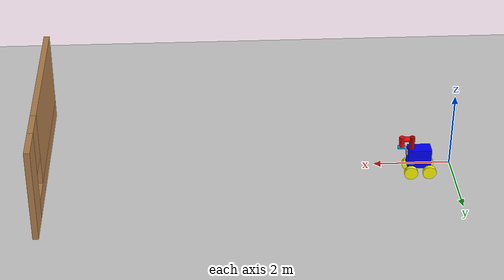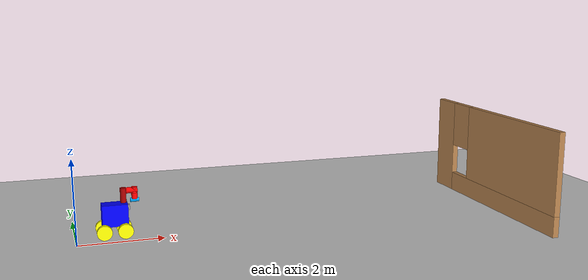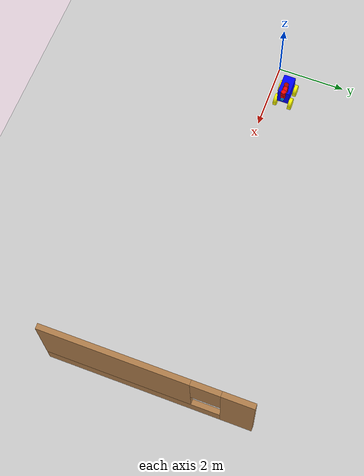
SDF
<sdf version="1.7">
 <world name="default">
  <model name="ground_plane">
   <static>true</static>
   <link name="link">
    <collision name="collision"><geometry><plane><normal>0 0 1</normal></plane></geometry></collision>
    <visual name="visual">
     <geometry><plane><normal>0 0 1</normal><size>100 100</size></plane></geometry>
     <material>
      <ambient>0.8 0.8 0.8 1</ambient>
      <diffuse>0.8 0.8 0.8 1</diffuse>
      <specular>0.8 0.8 0.8 1</specular>
     </material>
    </visual>
   </link>
  </model>
  <model name="bot">
   <link name="link_0">
    <inertial>
     <mass>1</mass>
     <inertia>
      <ixx>0.166667</ixx>
      <ixy>0</ixy>
      <ixz>0</ixz>
      <iyy>0.166667</iyy>
      <iyz>0</iyz>
      <izz>0.166667</izz>
     </inertia>
    </inertial>
    <pose>-0.916006 -0.480893 0.164071 0 -0 0</pose>
    <visual name="visual">
     <geometry><box><size>0.6 0.35 0.52</size></box></geometry>
     <material>
      <lighting>1</lighting>
      <script><uri>file://media/materials/scripts/gazebo.material</uri><name>Gazebo/Grey</name></script>
      <shader type="pixel"><normal_map>__default__</normal_map></shader>
      <ambient>0 0 1 1</ambient>
      <diffuse>0 0 1 1</diffuse>
      <specular>0.01 0.01 0.01 1</specular>
      <emissive>0 0 0 1</emissive>
     </material>
    </visual>
    <collision name="collision">
     <geometry><box><size>0.6 0.35 0.52</size></box></geometry>
     <surface>
      <friction>
       <ode><mu>1</mu><mu2>1</mu2><fdir1>0 0 0</fdir1><slip1>0</slip1><slip2>0</slip2></ode>
       <torsional>
        <coefficient>1</coefficient>
        <patch_radius>0</patch_radius>
        <surface_radius>0</surface_radius>
        <use_patch_radius>1</use_patch_radius>
        <ode><slip>0</slip></ode>
       </torsional>
      </friction>
      <bounce><restitution_coefficient>0</restitution_coefficient><threshold>1e+06</threshold></bounce>
      <contact>
       <collide_without_contact>0</collide_without_contact>
       <collide_without_contact_bitmask>1</collide_without_contact_bitmask>
       <collide_bitmask>1</collide_bitmask>
       <ode>
        <soft_cfm>0</soft_cfm>
        <soft_erp>0.2</soft_erp>
        <kp>1e+13</kp>
        <kd>1</kd>
        <max_vel>0.01</max_vel>
        <min_depth>0</min_depth>
       </ode>
       <bullet>
        <split_impulse>1</split_impulse>
        <split_impulse_penetration_threshold>-0.01</split_impulse_penetration_threshold>
        <soft_cfm>0</soft_cfm>
        <soft_erp>0.2</soft_erp>
        <kp>1e+13</kp>
        <kd>1</kd>
       </bullet>
      </contact>
     </surface>
    </collision>
   </link>
   <link name="depth">
    <pose>-1.24249 -0.502778 0.308174 0 -0 3.14</pose>
    <sensor name="depth_camera" type="depth">
     <always_on>1</always_on>
     <visualize>1</visualize>
     <update_rate>10</update_rate>
     <camera>
      <horizontal_fov>1.0472</horizontal_fov>
      <image><width>640</width><height>480</height><format>R8G8B8</format></image>
      <clip><near>0.05</near><far>40</far></clip>
     </camera>
     <plugin name="ignition::gazebo::systems::Sensors" filename="libignition-gazebo-sensors-system.so">
      <baseline>0.2</baseline>
      <alwaysOn>1</alwaysOn>
      <updateRate>1.0</updateRate>
      <cameraName>depth_camera_ir</cameraName>
      <imageTopicName>/depth_camera/color/image_raw</imageTopicName>
      <cameraInfoTopicName>/depth_camera/color/camera_info</cameraInfoTopicName>
      <depthImageTopicName>/depth_camera/depth/image_raw</depthImageTopicName>
      <depthImageInfoTopicName>/depth_camera/depth/camera_info</depthImageInfoTopicName>
      <pointCloudTopicName>/depth_camera/depth/points</pointCloudTopicName>
      <frameName>depth_frame</frameName>
      <pointCloudCutoff>0.5</pointCloudCutoff>
      <pointCloudCutoffMax>3.0</pointCloudCutoffMax>
      <distortionK1>0.00000001</distortionK1>
      <distortionK2>0.00000001</distortionK2>
      <distortionK3>0.00000001</distortionK3>
      <distortionT1>0.00000001</distortionT1>
      <distortionT2>0.00000001</distortionT2>
      <CxPrime>0</CxPrime>
      <Cx>0</Cx>
      <Cy>0</Cy>
      <focalLength>0</focalLength>
      <hackBaseline>0</hackBaseline>
     </plugin>
    </sensor>
    <inertial>
     <inertia><ixx>9e-07</ixx><ixy>0</ixy><ixz>0</ixz><iyy>7.5e-07</iyy><iyz>0</iyz><izz>3.5e-07</izz></inertia>
     <mass>0.000491</mass>
    </inertial>
    <visual name="visual">
     <geometry><box><size>0.049528 0.07825 0.126309</size></box></geometry>
     <material>
      <lighting>1</lighting>
      <script><uri>file://media/materials/scripts/gazebo.material</uri><name>Gazebo/Grey</name></script>
      <shader type="pixel"><normal_map>__default__</normal_map></shader>
      <emissive>0 0 0 1</emissive>
      <ambient>0.3 0.3 0.3 1</ambient>
      <diffuse>0.7 0.7 0.7 1</diffuse>
      <specular>0.01 0.01 0.01 1</specular>
     </material>
    </visual>
    <collision name="collision_0">
     <geometry><box><size>0.049528 0.07825 0.126309</size></box></geometry>
     <surface>
      <friction>
       <ode><mu>1</mu><mu2>1</mu2><fdir1>0 0 0</fdir1><slip1>0</slip1><slip2>0</slip2></ode>
       <torsional>
        <coefficient>1</coefficient>
        <patch_radius>0</patch_radius>
        <surface_radius>0</surface_radius>
        <use_patch_radius>1</use_patch_radius>
        <ode><slip>0</slip></ode>
       </torsional>
      </friction>
      <bounce><restitution_coefficient>0</restitution_coefficient><threshold>1e+06</threshold></bounce>
      <contact>
       <collide_without_contact>0</collide_without_contact>
       <collide_without_contact_bitmask>1</collide_without_contact_bitmask>
       <collide_bitmask>1</collide_bitmask>
       <ode>
        <soft_cfm>0</soft_cfm>
        <soft_erp>0.2</soft_erp>
        <kp>1e+13</kp>
        <kd>1</kd>
        <max_vel>0.01</max_vel>
        <min_depth>0</min_depth>
       </ode>
       <bullet>
        <split_impulse>1</split_impulse>
        <split_impulse_penetration_threshold>-0.01</split_impulse_penetration_threshold>
        <soft_cfm>0</soft_cfm>
        <soft_erp>0.2</soft_erp>
        <kp>1e+13</kp>
        <kd>1</kd>
       </bullet>
      </contact>
     </surface>
    </collision>
   </link>
   <link name="link_0_0">
    <inertial>
     <mass>1</mass>
     <inertia><ixx>0.145833</ixx><ixy>0</ixy><ixz>0</ixz><iyy>0.145833</iyy><iyz>0</iyz><izz>0.125</izz></inertia>
    </inertial>
    <pose>-1.13 -0.515896 0.599073 -7e-06 0 4.2e-05</pose>
    <visual name="visual">
     <geometry><cylinder><radius>0.07</radius><length>0.35</length></cylinder></geometry>
     <material>
      <lighting>1</lighting>
      <script><uri>file://media/materials/scripts/gazebo.material</uri><name>Gazebo/Grey</name></script>
      <shader type="pixel"><normal_map>__default__</normal_map></shader>
      <ambient>0.667 0 0 1</ambient>
      <diffuse>0.667 0 0 1</diffuse>
      <specular>0.01 0.01 0.01 1</specular>
      <emissive>0 0 0 1</emissive>
     </material>
    </visual>
    <collision name="collision">
     <geometry><cylinder><radius>0.07</radius><length>0.35</length></cylinder></geometry>
     <surface>
      <friction>
       <ode><mu>1</mu><mu2>1</mu2><fdir1>0 0 0</fdir1><slip1>0</slip1><slip2>0</slip2></ode>
       <torsional>
        <coefficient>1</coefficient>
        <patch_radius>0</patch_radius>
        <surface_radius>0</surface_radius>
        <use_patch_radius>1</use_patch_radius>
        <ode><slip>0</slip></ode>
       </torsional>
      </friction>
      <bounce><restitution_coefficient>0</restitution_coefficient><threshold>1e+06</threshold></bounce>
      <contact>
       <collide_without_contact>0</collide_without_contact>
       <collide_without_contact_bitmask>1</collide_without_contact_bitmask>
       <collide_bitmask>1</collide_bitmask>
       <ode>
        <soft_cfm>0</soft_cfm>
        <soft_erp>0.2</soft_erp>
        <kp>1e+13</kp>
        <kd>1</kd>
        <max_vel>0.01</max_vel>
        <min_depth>0</min_depth>
       </ode>
       <bullet>
        <split_impulse>1</split_impulse>
        <split_impulse_penetration_threshold>-0.01</split_impulse_penetration_threshold>
        <soft_cfm>0</soft_cfm>
        <soft_erp>0.2</soft_erp>
        <kp>1e+13</kp>
        <kd>1</kd>
       </bullet>
      </contact>
     </surface>
    </collision>
   </link>
   <link name="link_0_1">
    <inertial>
     <mass>0.2</mass>
     <inertia>
      <ixx>0.00059542</ixx>
      <ixy>0</ixy>
      <ixz>0</ixz>
      <iyy>0.00059542</iyy>
      <iyz>0</iyz>
      <izz>0.00049</izz>
     </inertia>
    </inertial>
    <pose>-1.38898 -0.512876 0.570835 -1.1e-05 7e-06 -0.016029</pose>
    <visual name="visual">
     <geometry><cylinder><radius>0.07</radius><length>0.145</length></cylinder></geometry>
     <material>
      <lighting>1</lighting>
      <script><uri>file://media/materials/scripts/gazebo.material</uri><name>Gazebo/Grey</name></script>
      <shader type="pixel"><normal_map>__default__</normal_map></shader>
      <ambient>1 0 0 1</ambient>
      <diffuse>1 0 0 1</diffuse>
      <specular>0.01 0.01 0.01 1</specular>
      <emissive>0 0 0 1</emissive>
     </material>
    </visual>
    <collision name="collision">
     <geometry><cylinder><radius>0.07</radius><length>0.145</length></cylinder></geometry>
     <surface>
      <friction>
       <ode><mu>1</mu><mu2>1</mu2><fdir1>0 0 0</fdir1><slip1>0</slip1><slip2>0</slip2></ode>
       <torsional>
        <coefficient>1</coefficient>
        <patch_radius>0</patch_radius>
        <surface_radius>0</surface_radius>
        <use_patch_radius>1</use_patch_radius>
        <ode><slip>0</slip></ode>
       </torsional>
      </friction>
      <bounce><restitution_coefficient>0</restitution_coefficient><threshold>1e+06</threshold></bounce>
      <contact>
       <collide_without_contact>0</collide_without_contact>
       <collide_without_contact_bitmask>1</collide_without_contact_bitmask>
       <collide_bitmask>1</collide_bitmask>
       <ode>
        <soft_cfm>0</soft_cfm>
        <soft_erp>0.2</soft_erp>
        <kp>1e+13</kp>
        <kd>1</kd>
        <max_vel>0.01</max_vel>
        <min_depth>0</min_depth>
       </ode>
       <bullet>
        <split_impulse>1</split_impulse>
        <split_impulse_penetration_threshold>-0.01</split_impulse_penetration_threshold>
        <soft_cfm>0</soft_cfm>
        <soft_erp>0.2</soft_erp>
        <kp>1e+13</kp>
        <kd>1</kd>
       </bullet>
      </contact>
     </surface>
    </collision>
   </link>
   <link name="link_0_1_clone">
    <inertial>
     <mass>0.2</mass>
     <inertia>
      <ixx>0.00057167</ixx>
      <ixy>0</ixy>
      <ixz>0</ixz>
      <iyy>0.00057167</iyy>
      <iyz>0</iyz>
      <izz>0.00049</izz>
     </inertia>
    </inertial>
    <pose>-1.39048 -0.516372 0.71051 -1.3e-05 9e-06 0.011714</pose>
    <visual name="visual">
     <geometry><cylinder><radius>0.07</radius><length>0.14</length></cylinder></geometry>
     <material>
      <lighting>1</lighting>
      <script><uri>file://media/materials/scripts/gazebo.material</uri><name>Gazebo/Grey</name></script>
      <shader type="pixel"><normal_map>__default__</normal_map></shader>
      <ambient>1 0 0 1</ambient>
      <diffuse>1 0 0 1</diffuse>
      <specular>0.01 0.01 0.01 1</specular>
      <emissive>0 0 0 1</emissive>
     </material>
    </visual>
    <collision name="collision">
     <geometry><cylinder><radius>0.07</radius><length>0.14</length></cylinder></geometry>
     <surface>
      <friction>
       <ode><mu>1</mu><mu2>1</mu2><fdir1>0 0 0</fdir1><slip1>0</slip1><slip2>0</slip2></ode>
       <torsional>
        <coefficient>1</coefficient>
        <patch_radius>0</patch_radius>
        <surface_radius>0</surface_radius>
        <use_patch_radius>1</use_patch_radius>
        <ode><slip>0</slip></ode>
       </torsional>
      </friction>
      <bounce><restitution_coefficient>0</restitution_coefficient><threshold>1e+06</threshold></bounce>
      <contact>
       <collide_without_contact>0</collide_without_contact>
       <collide_without_contact_bitmask>1</collide_without_contact_bitmask>
       <collide_bitmask>1</collide_bitmask>
       <ode>
        <soft_cfm>0</soft_cfm>
        <soft_erp>0.2</soft_erp>
        <kp>1e+13</kp>
        <kd>1</kd>
        <max_vel>0.01</max_vel>
        <min_depth>0</min_depth>
       </ode>
       <bullet>
        <split_impulse>1</split_impulse>
        <split_impulse_penetration_threshold>-0.01</split_impulse_penetration_threshold>
        <soft_cfm>0</soft_cfm>
        <soft_erp>0.2</soft_erp>
        <kp>1e+13</kp>
        <kd>1</kd>
       </bullet>
      </contact>
     </surface>
    </collision>
   </link>
   <link name="link_0_2">
    <inertial>
     <mass>0.01</mass>
     <inertia>
      <ixx>3.958e-05</ixx>
      <ixy>0</ixy>
      <ixz>0</ixz>
      <iyy>3.958e-05</iyy>
      <iyz>0</iyz>
      <izz>1.25e-05</izz>
     </inertia>
    </inertial>
    <pose>-1.38879 -0.51287 0.473335 -0.000762 -1.56347 0.033391</pose>
    <visual name="visual">
     <geometry><cylinder><radius>0.05</radius><length>0.2</length></cylinder></geometry>
     <material>
      <lighting>1</lighting>
      <script><uri>file://media/materials/scripts/gazebo.material</uri><name>Gazebo/Grey</name></script>
      <shader type="pixel"><normal_map>__default__</normal_map></shader>
      <ambient>0 0.667 1 1</ambient>
      <diffuse>0 0.667 1 1</diffuse>
      <specular>0.01 0.01 0.01 1</specular>
      <emissive>0 0 0 1</emissive>
     </material>
    </visual>
    <collision name="collision">
     <geometry><cylinder><radius>0.05</radius><length>0.2</length></cylinder></geometry>
     <surface>
      <friction>
       <ode><mu>1</mu><mu2>1</mu2><fdir1>0 0 0</fdir1><slip1>0</slip1><slip2>0</slip2></ode>
       <torsional>
        <coefficient>1</coefficient>
        <patch_radius>0</patch_radius>
        <surface_radius>0</surface_radius>
        <use_patch_radius>1</use_patch_radius>
        <ode><slip>0</slip></ode>
       </torsional>
      </friction>
      <bounce><restitution_coefficient>0</restitution_coefficient><threshold>1e+06</threshold></bounce>
      <contact>
       <collide_without_contact>0</collide_without_contact>
       <collide_without_contact_bitmask>1</collide_without_contact_bitmask>
       <collide_bitmask>1</collide_bitmask>
       <ode>
        <soft_cfm>0</soft_cfm>
        <soft_erp>0.2</soft_erp>
        <kp>1e+13</kp>
        <kd>1</kd>
        <max_vel>0.01</max_vel>
        <min_depth>0</min_depth>
       </ode>
       <bullet>
        <split_impulse>1</split_impulse>
        <split_impulse_penetration_threshold>-0.01</split_impulse_penetration_threshold>
        <soft_cfm>0</soft_cfm>
        <soft_erp>0.2</soft_erp>
        <kp>1e+13</kp>
        <kd>1</kd>
       </bullet>
      </contact>
     </surface>
    </collision>
   </link>
   <link name="link_2_clone_0">
    <inertial>
     <mass>4</mass>
     <inertia><ixx>0.0433333</ixx><ixy>0</ixy><ixz>0</ixz><iyy>0.0433333</iyy><iyz>0</iyz><izz>0.08</izz></inertia>
    </inertial>
    <pose>-1.13219 -0.255482 -0.2 1.56668 -0 0</pose>
    <visual name="visual">
     <geometry><cylinder><radius>0.175</radius><length>0.1</length></cylinder></geometry>
     <material>
      <lighting>1</lighting>
      <script><uri>file://media/materials/scripts/gazebo.material</uri><name>Gazebo/Grey</name></script>
      <shader type="pixel"><normal_map>__default__</normal_map></shader>
      <ambient>1 1 0 1</ambient>
      <diffuse>1 1 0 1</diffuse>
      <specular>0.01 0.01 0.01 1</specular>
      <emissive>0 0 0 1</emissive>
     </material>
    </visual>
    <collision name="collision">
     <geometry><cylinder><radius>0.175</radius><length>0.1</length></cylinder></geometry>
     <surface>
      <friction>
       <ode><mu>1</mu><mu2>1</mu2><fdir1>0 0 0</fdir1><slip1>0</slip1><slip2>0</slip2></ode>
       <torsional>
        <coefficient>1</coefficient>
        <patch_radius>0</patch_radius>
        <surface_radius>0</surface_radius>
        <use_patch_radius>1</use_patch_radius>
        <ode><slip>0</slip></ode>
       </torsional>
      </friction>
      <bounce><restitution_coefficient>0</restitution_coefficient><threshold>1e+06</threshold></bounce>
      <contact>
       <collide_without_contact>0</collide_without_contact>
       <collide_without_contact_bitmask>1</collide_without_contact_bitmask>
       <collide_bitmask>1</collide_bitmask>
       <ode>
        <soft_cfm>0</soft_cfm>
        <soft_erp>0.2</soft_erp>
        <kp>1e+13</kp>
        <kd>1</kd>
        <max_vel>0.01</max_vel>
        <min_depth>0</min_depth>
       </ode>
       <bullet>
        <split_impulse>1</split_impulse>
        <split_impulse_penetration_threshold>-0.01</split_impulse_penetration_threshold>
        <soft_cfm>0</soft_cfm>
        <soft_erp>0.2</soft_erp>
        <kp>1e+13</kp>
        <kd>1</kd>
       </bullet>
      </contact>
     </surface>
    </collision>
   </link>
   <link name="link_2_clone_0_clone">
    <inertial>
     <mass>4</mass>
     <inertia><ixx>0.0433333</ixx><ixy>0</ixy><ixz>0</ixz><iyy>0.0433333</iyy><iyz>0</iyz><izz>0.08</izz></inertia>
    </inertial>
    <pose>-0.65 -0.256174 -0.2 1.56668 -0 0</pose>
    <visual name="visual">
     <geometry><cylinder><radius>0.175</radius><length>0.1</length></cylinder></geometry>
     <material>
      <lighting>1</lighting>
      <script><uri>file://media/materials/scripts/gazebo.material</uri><name>Gazebo/Grey</name></script>
      <shader type="pixel"><normal_map>__default__</normal_map></shader>
      <ambient>1 1 0 1</ambient>
      <diffuse>1 1 0 1</diffuse>
      <specular>0.01 0.01 0.01 1</specular>
      <emissive>0 0 0 1</emissive>
     </material>
    </visual>
    <collision name="collision">
     <geometry><cylinder><radius>0.175</radius><length>0.1</length></cylinder></geometry>
     <surface>
      <friction>
       <ode><mu>1</mu><mu2>1</mu2><fdir1>0 0 0</fdir1><slip1>0</slip1><slip2>0</slip2></ode>
       <torsional>
        <coefficient>1</coefficient>
        <patch_radius>0</patch_radius>
        <surface_radius>0</surface_radius>
        <use_patch_radius>1</use_patch_radius>
        <ode><slip>0</slip></ode>
       </torsional>
      </friction>
      <bounce><restitution_coefficient>0</restitution_coefficient><threshold>1e+06</threshold></bounce>
      <contact>
       <collide_without_contact>0</collide_without_contact>
       <collide_without_contact_bitmask>1</collide_without_contact_bitmask>
       <collide_bitmask>1</collide_bitmask>
       <ode>
        <soft_cfm>0</soft_cfm>
        <soft_erp>0.2</soft_erp>
        <kp>1e+13</kp>
        <kd>1</kd>
        <max_vel>0.01</max_vel>
        <min_depth>0</min_depth>
       </ode>
       <bullet>
        <split_impulse>1</split_impulse>
        <split_impulse_penetration_threshold>-0.01</split_impulse_penetration_threshold>
        <soft_cfm>0</soft_cfm>
        <soft_erp>0.2</soft_erp>
        <kp>1e+13</kp>
        <kd>1</kd>
       </bullet>
      </contact>
     </surface>
    </collision>
   </link>
   <link name="link_2_clone_1">
    <inertial>
     <mass>4</mass>
     <inertia><ixx>0.0433333</ixx><ixy>0</ixy><ixz>0</ixz><iyy>0.0433333</iyy><iyz>0</iyz><izz>0.08</izz></inertia>
    </inertial>
    <pose>-0.65 -0.706304 -0.2 1.56668 -0 0</pose>
    <visual name="visual">
     <geometry><cylinder><radius>0.175</radius><length>0.1</length></cylinder></geometry>
     <material>
      <lighting>1</lighting>
      <script><uri>file://media/materials/scripts/gazebo.material</uri><name>Gazebo/Grey</name></script>
      <shader type="pixel"><normal_map>__default__</normal_map></shader>
      <ambient>1 1 0 1</ambient>
      <diffuse>1 1 0 1</diffuse>
      <specular>0.01 0.01 0.01 1</specular>
      <emissive>0 0 0 1</emissive>
     </material>
    </visual>
    <collision name="collision">
     <geometry><cylinder><radius>0.175</radius><length>0.1</length></cylinder></geometry>
     <surface>
      <friction>
       <ode><mu>1</mu><mu2>1</mu2><fdir1>0 0 0</fdir1><slip1>0</slip1><slip2>0</slip2></ode>
       <torsional>
        <coefficient>1</coefficient>
        <patch_radius>0</patch_radius>
        <surface_radius>0</surface_radius>
        <use_patch_radius>1</use_patch_radius>
        <ode><slip>0</slip></ode>
       </torsional>
      </friction>
      <bounce><restitution_coefficient>0</restitution_coefficient><threshold>1e+06</threshold></bounce>
      <contact>
       <collide_without_contact>0</collide_without_contact>
       <collide_without_contact_bitmask>1</collide_without_contact_bitmask>
       <collide_bitmask>1</collide_bitmask>
       <ode>
        <soft_cfm>0</soft_cfm>
        <soft_erp>0.2</soft_erp>
        <kp>1e+13</kp>
        <kd>1</kd>
        <max_vel>0.01</max_vel>
        <min_depth>0</min_depth>
       </ode>
       <bullet>
        <split_impulse>1</split_impulse>
        <split_impulse_penetration_threshold>-0.01</split_impulse_penetration_threshold>
        <soft_cfm>0</soft_cfm>
        <soft_erp>0.2</soft_erp>
        <kp>1e+13</kp>
        <kd>1</kd>
       </bullet>
      </contact>
     </surface>
    </collision>
   </link>
   <link name="link_2_clone_2">
    <inertial>
     <mass>4</mass>
     <inertia>
      <ixx>0.0339583</ixx>
      <ixy>0</ixy>
      <ixz>0</ixz>
      <iyy>0.0339583</iyy>
      <iyz>0</iyz>
      <izz>0.06125</izz>
     </inertia>
    </inertial>
    <pose>-1.13219 -0.706304 -0.2 1.56668 -0 0</pose>
    <visual name="visual">
     <geometry><cylinder><radius>0.175</radius><length>0.1</length></cylinder></geometry>
     <material>
      <lighting>1</lighting>
      <script><uri>file://media/materials/scripts/gazebo.material</uri><name>Gazebo/Grey</name></script>
      <shader type="pixel"><normal_map>__default__</normal_map></shader>
      <ambient>1 1 0 1</ambient>
      <diffuse>1 1 0 1</diffuse>
      <specular>0.01 0.01 0.01 1</specular>
      <emissive>0 0 0 1</emissive>
     </material>
    </visual>
    <collision name="collision">
     <geometry><cylinder><radius>0.175</radius><length>0.1</length></cylinder></geometry>
     <surface>
      <friction>
       <ode><mu>1</mu><mu2>1</mu2><fdir1>0 0 0</fdir1><slip1>0</slip1><slip2>0</slip2></ode>
       <torsional>
        <coefficient>1</coefficient>
        <patch_radius>0</patch_radius>
        <surface_radius>0</surface_radius>
        <use_patch_radius>1</use_patch_radius>
        <ode><slip>0</slip></ode>
       </torsional>
      </friction>
      <bounce><restitution_coefficient>0</restitution_coefficient><threshold>1e+06</threshold></bounce>
      <contact>
       <collide_without_contact>0</collide_without_contact>
       <collide_without_contact_bitmask>1</collide_without_contact_bitmask>
       <collide_bitmask>1</collide_bitmask>
       <ode>
        <soft_cfm>0</soft_cfm>
        <soft_erp>0.2</soft_erp>
        <kp>1e+13</kp>
        <kd>1</kd>
        <max_vel>0.01</max_vel>
        <min_depth>0</min_depth>
       </ode>
       <bullet>
        <split_impulse>1</split_impulse>
        <split_impulse_penetration_threshold>-0.01</split_impulse_penetration_threshold>
        <soft_cfm>0</soft_cfm>
        <soft_erp>0.2</soft_erp>
        <kp>1e+13</kp>
        <kd>1</kd>
       </bullet>
      </contact>
     </surface>
    </collision>
   </link>
   <link name="link_3">
    <inertial>
     <mass>0.5</mass>
     <inertia>
      <ixx>0.00342917</ixx>
      <ixy>0</ixy>
      <ixz>0</ixz>
      <iyy>0.00342917</iyy>
      <iyz>0</iyz>
      <izz>0.001225</izz>
     </inertia>
    </inertial>
    <pose>-1.32812 -0.514642 0.707474 -0.0003 -1.54728 0.00034</pose>
    <visual name="visual">
     <geometry><cylinder><radius>0.07</radius><length>0.26</length></cylinder></geometry>
     <material>
      <lighting>1</lighting>
      <script><uri>file://media/materials/scripts/gazebo.material</uri><name>Gazebo/Grey</name></script>
      <shader type="pixel"><normal_map>__default__</normal_map></shader>
      <ambient>1 0 0 1</ambient>
      <diffuse>1 0 0 1</diffuse>
      <specular>0.01 0.01 0.01 1</specular>
      <emissive>0 0 0 1</emissive>
     </material>
    </visual>
    <collision name="collision">
     <geometry><cylinder><radius>0.07</radius><length>0.26</length></cylinder></geometry>
     <surface>
      <friction>
       <ode><mu>1</mu><mu2>1</mu2><fdir1>0 0 0</fdir1><slip1>0</slip1><slip2>0</slip2></ode>
       <torsional>
        <coefficient>1</coefficient>
        <patch_radius>0</patch_radius>
        <surface_radius>0</surface_radius>
        <use_patch_radius>1</use_patch_radius>
        <ode><slip>0</slip></ode>
       </torsional>
      </friction>
      <bounce><restitution_coefficient>0</restitution_coefficient><threshold>1e+06</threshold></bounce>
      <contact>
       <collide_without_contact>0</collide_without_contact>
       <collide_without_contact_bitmask>1</collide_without_contact_bitmask>
       <collide_bitmask>1</collide_bitmask>
       <ode>
        <soft_cfm>0</soft_cfm>
        <soft_erp>0.2</soft_erp>
        <kp>1e+13</kp>
        <kd>1</kd>
        <max_vel>0.01</max_vel>
        <min_depth>0</min_depth>
       </ode>
       <bullet>
        <split_impulse>1</split_impulse>
        <split_impulse_penetration_threshold>-0.01</split_impulse_penetration_threshold>
        <soft_cfm>0</soft_cfm>
        <soft_erp>0.2</soft_erp>
        <kp>1e+13</kp>
        <kd>1</kd>
       </bullet>
      </contact>
     </surface>
    </collision>
   </link>
   <joint name="Arm_joint_1" type="revolute">
    <parent>link_0</parent>
    <child>link_0_0</child>
    <pose>0 0 -0.03 0 -0 0</pose>
    <axis>
     <xyz>0 0 -1</xyz>
     <limit><lower>-1.79769e+308</lower><upper>1.79769e+308</upper><effort>-1</effort></limit>
     <dynamics>
      <spring_reference>0</spring_reference>
      <spring_stiffness>0</spring_stiffness>
      <damping>0</damping>
      <friction>0</friction>
     </dynamics>
    </axis>
    <physics>
     <ode><limit><cfm>0</cfm><erp>0.2</erp></limit><suspension><cfm>0</cfm><erp>0.2</erp></suspension></ode>
    </physics>
   </joint>
   <joint name="Arm_joint_2_fixed" type="fixed">
    <parent>link_0_0</parent>
    <child>link_3</child>
    <physics>
     <ode><limit><cfm>0</cfm><erp>0.2</erp></limit><suspension><cfm>0</cfm><erp>0.2</erp></suspension></ode>
    </physics>
   </joint>
   <joint name="wheel_joint_1" type="revolute">
    <parent>link_0</parent>
    <child>link_2_clone_2</child>
    <axis>
     <xyz>0 0 1</xyz>
     <limit><lower>-1.79769e+308</lower><upper>1.79769e+308</upper><effort>-1</effort></limit>
     <dynamics>
      <spring_reference>0</spring_reference>
      <spring_stiffness>0</spring_stiffness>
      <damping>0</damping>
      <friction>0</friction>
     </dynamics>
    </axis>
    <physics>
     <ode><limit><cfm>0</cfm><erp>0.2</erp></limit><suspension><cfm>0</cfm><erp>0.2</erp></suspension></ode>
    </physics>
   </joint>
   <joint name="arm_joint_3_fixed" type="fixed">
    <parent>link_3</parent>
    <child>link_0_1_clone</child>
    <physics>
     <ode><limit><cfm>0</cfm><erp>0.2</erp></limit><suspension><cfm>0</cfm><erp>0.2</erp></suspension></ode>
    </physics>
   </joint>
   <joint name="arm_joint_3_prismatic" type="prismatic">
    <parent>link_3</parent>
    <child>link_0_1</child>
    <axis>
     <xyz>0 0 -1</xyz>
     <limit><lower>-0.145</lower><upper>0</upper><effort>-1</effort></limit>
     <dynamics>
      <spring_reference>0</spring_reference>
      <spring_stiffness>0</spring_stiffness>
      <damping>0</damping>
      <friction>0</friction>
     </dynamics>
    </axis>
    <physics>
     <ode><limit><cfm>0</cfm><erp>0.2</erp></limit><suspension><cfm>0</cfm><erp>0.2</erp></suspension></ode>
    </physics>
   </joint>
   <joint name="arm_joint_4_rotate" type="revolute">
    <parent>link_0_1</parent>
    <child>link_0_2</child>
    <axis>
     <xyz>1 0 0</xyz>
     <limit><lower>-1.79769e+308</lower><upper>1.79769e+308</upper><effort>-1</effort></limit>
     <dynamics>
      <spring_reference>0</spring_reference>
      <spring_stiffness>0</spring_stiffness>
      <damping>0</damping>
      <friction>0</friction>
     </dynamics>
    </axis>
    <physics>
     <ode><limit><cfm>0</cfm><erp>0.2</erp></limit><suspension><cfm>0</cfm><erp>0.2</erp></suspension></ode>
    </physics>
   </joint>
   <joint name="link_0_JOINT_0" type="fixed">
    <parent>link_0</parent>
    <child>depth</child>
    <physics>
     <ode><limit><cfm>0</cfm><erp>0.2</erp></limit><suspension><cfm>0</cfm><erp>0.2</erp></suspension></ode>
    </physics>
   </joint>
   <joint name="wheel_joint_2" type="revolute">
    <parent>link_0</parent>
    <child>link_2_clone_1</child>
    <axis>
     <xyz>0 0 1</xyz>
     <limit><lower>-1.79769e+308</lower><upper>1.79769e+308</upper><effort>-1</effort></limit>
     <dynamics>
      <spring_reference>0</spring_reference>
      <spring_stiffness>0</spring_stiffness>
      <damping>0</damping>
      <friction>0</friction>
     </dynamics>
    </axis>
    <physics>
     <ode><limit><cfm>0</cfm><erp>0.2</erp></limit><suspension><cfm>0</cfm><erp>0.2</erp></suspension></ode>
    </physics>
   </joint>
   <joint name="wheel_joint_3" type="revolute">
    <parent>link_0</parent>
    <child>link_2_clone_0</child>
    <axis>
     <xyz>0 0 1</xyz>
     <limit><lower>-1.79769e+308</lower><upper>1.79769e+308</upper><effort>-1</effort></limit>
     <dynamics>
      <spring_reference>0</spring_reference>
      <spring_stiffness>0</spring_stiffness>
      <damping>0</damping>
      <friction>0</friction>
     </dynamics>
    </axis>
    <physics>
     <ode><limit><cfm>0</cfm><erp>0.2</erp></limit><suspension><cfm>0</cfm><erp>0.2</erp></suspension></ode>
    </physics>
   </joint>
   <joint name="wheel_joint_4" type="revolute">
    <parent>link_0</parent>
    <child>link_2_clone_0_clone</child>
    <axis>
     <xyz>0 0 1</xyz>
     <limit><lower>-1.79769e+308</lower><upper>1.79769e+308</upper><effort>-1</effort></limit>
     <dynamics>
      <spring_reference>0</spring_reference>
      <spring_stiffness>0</spring_stiffness>
      <damping>0</damping>
      <friction>0</friction>
     </dynamics>
    </axis>
    <physics>
     <ode><limit><cfm>0</cfm><erp>0.2</erp></limit><suspension><cfm>0</cfm><erp>0.2</erp></suspension></ode>
    </physics>
   </joint>
   <static>0</static>
   <pose>0 0 0.375207 0 0 3.14</pose>
   <plugin filename="libignition-gazebo-diff-drive-system.so" name="ignition::gazebo::systems::DiffDrive">
    <num_wheel_pairs>2</num_wheel_pairs>
    <left_joint>wheel_joint_1</left_joint>
    <right_joint>wheel_joint_3</right_joint>
    <left_joint>wheel_joint_2</left_joint>
    <right_joint>wheel_joint_4</right_joint>
    <wheel_separation>0.425886</wheel_separation>
    <wheel_radius>0.175</wheel_radius>
    <odom_publish_frequency>50</odom_publish_frequency>
    <topic>cmd_vel</topic>
   </plugin>
  </model>
  <model name="Wall">
   <link name="Wall_2">
    <pose>-6.63909 -1.5e-05 0 0 -0 1.5708</pose>
    <inertial>
     <inertia><ixx>0</ixx><ixy>0</ixy><ixz>0</ixz><iyy>0</iyy><iyz>0</iyz><izz>0</izz></inertia>
     <mass>0</mass>
    </inertial>
    <visual name="Wall_2_Visual_0">
     <pose>-2.43375 0 1.25 0 -0 0</pose>
     <geometry><box><size>0.8825 0.15 2.5</size></box></geometry>
     <material>
      <script><uri>file://media/materials/scripts/gazebo.material</uri><name>Gazebo/Wood</name></script>
      <ambient>0.996078 0.47451 0.0196078 1</ambient>
      <diffuse>0.996078 0.47451 0.0196078 1</diffuse>
      <shader type="pixel"/>
     </material>
     <meta><layer>0</layer></meta>
    </visual>
    <visual name="Wall_2_Visual_2">
     <pose>0.84125 0 1.5 0 -0 0</pose>
     <geometry><box><size>4.0675 0.15 2</size></box></geometry>
     <material>
      <script><uri>file://media/materials/scripts/gazebo.material</uri><name>Gazebo/Wood</name></script>
      <ambient>0.996078 0.47451 0.0196078 1</ambient>
      <diffuse>0.996078 0.47451 0.0196078 1</diffuse>
      <shader type="pixel"/>
     </material>
     <meta><layer>0</layer></meta>
    </visual>
    <visual name="Wall_2_Visual_1">
     <pose>0.44125 0 0.25 0 -0 0</pose>
     <geometry><box><size>4.86751 0.15 0.5</size></box></geometry>
     <material>
      <script><uri>file://media/materials/scripts/gazebo.material</uri><name>Gazebo/Wood</name></script>
      <ambient>0.996078 0.47451 0.0196078 1</ambient>
      <diffuse>0.996078 0.47451 0.0196078 1</diffuse>
      <shader type="pixel"/>
     </material>
     <meta><layer>0</layer></meta>
    </visual>
    <visual name="Wall_2_Visual_3">
     <pose>-1.5925 0 1.9 0 -0 0</pose>
     <geometry><box><size>0.8 0.15 1.2</size></box></geometry>
     <material>
      <script><uri>file://media/materials/scripts/gazebo.material</uri><name>Gazebo/Wood</name></script>
      <ambient>0.996078 0.47451 0.0196078 1</ambient>
      <diffuse>0.996078 0.47451 0.0196078 1</diffuse>
      <shader type="pixel"/>
     </material>
     <meta><layer>0</layer></meta>
    </visual>
    <collision name="Wall_2_Collision_2">
     <pose>0.84125 0 1.5 0 -0 0</pose>
     <geometry><box><size>4.0675 0.15 2</size></box></geometry>
     <surface>
      <friction>
       <ode><mu>1</mu><mu2>1</mu2><fdir1>0 0 0</fdir1><slip1>0</slip1><slip2>0</slip2></ode>
       <torsional>
        <coefficient>1</coefficient>
        <patch_radius>0</patch_radius>
        <surface_radius>0</surface_radius>
        <use_patch_radius>1</use_patch_radius>
        <ode><slip>0</slip></ode>
       </torsional>
      </friction>
      <bounce><restitution_coefficient>0</restitution_coefficient><threshold>1e+06</threshold></bounce>
      <contact>
       <collide_without_contact>0</collide_without_contact>
       <collide_without_contact_bitmask>1</collide_without_contact_bitmask>
       <collide_bitmask>1</collide_bitmask>
       <ode>
        <soft_cfm>0</soft_cfm>
        <soft_erp>0.2</soft_erp>
        <kp>1e+13</kp>
        <kd>1</kd>
        <max_vel>0.01</max_vel>
        <min_depth>0</min_depth>
       </ode>
       <bullet>
        <split_impulse>1</split_impulse>
        <split_impulse_penetration_threshold>-0.01</split_impulse_penetration_threshold>
        <soft_cfm>0</soft_cfm>
        <soft_erp>0.2</soft_erp>
        <kp>1e+13</kp>
        <kd>1</kd>
       </bullet>
      </contact>
     </surface>
    </collision>
    <collision name="Wall_2_Collision_3">
     <pose>-1.5925 0 1.9 0 -0 0</pose>
     <geometry><box><size>0.8 0.15 1.2</size></box></geometry>
     <surface>
      <friction>
       <ode><mu>1</mu><mu2>1</mu2><fdir1>0 0 0</fdir1><slip1>0</slip1><slip2>0</slip2></ode>
       <torsional>
        <coefficient>1</coefficient>
        <patch_radius>0</patch_radius>
        <surface_radius>0</surface_radius>
        <use_patch_radius>1</use_patch_radius>
        <ode><slip>0</slip></ode>
       </torsional>
      </friction>
      <bounce><restitution_coefficient>0</restitution_coefficient><threshold>1e+06</threshold></bounce>
      <contact>
       <collide_without_contact>0</collide_without_contact>
       <collide_without_contact_bitmask>1</collide_without_contact_bitmask>
       <collide_bitmask>1</collide_bitmask>
       <ode>
        <soft_cfm>0</soft_cfm>
        <soft_erp>0.2</soft_erp>
        <kp>1e+13</kp>
        <kd>1</kd>
        <max_vel>0.01</max_vel>
        <min_depth>0</min_depth>
       </ode>
       <bullet>
        <split_impulse>1</split_impulse>
        <split_impulse_penetration_threshold>-0.01</split_impulse_penetration_threshold>
        <soft_cfm>0</soft_cfm>
        <soft_erp>0.2</soft_erp>
        <kp>1e+13</kp>
        <kd>1</kd>
       </bullet>
      </contact>
     </surface>
    </collision>
    <collision name="Wall_2_Collision_1">
     <pose>0.44125 0 0.25 0 -0 0</pose>
     <geometry><box><size>4.86751 0.15 0.5</size></box></geometry>
     <surface>
      <friction>
       <ode><mu>1</mu><mu2>1</mu2><fdir1>0 0 0</fdir1><slip1>0</slip1><slip2>0</slip2></ode>
       <torsional>
        <coefficient>1</coefficient>
        <patch_radius>0</patch_radius>
        <surface_radius>0</surface_radius>
        <use_patch_radius>1</use_patch_radius>
        <ode><slip>0</slip></ode>
       </torsional>
      </friction>
      <bounce><restitution_coefficient>0</restitution_coefficient><threshold>1e+06</threshold></bounce>
      <contact>
       <collide_without_contact>0</collide_without_contact>
       <collide_without_contact_bitmask>1</collide_without_contact_bitmask>
       <collide_bitmask>1</collide_bitmask>
       <ode>
        <soft_cfm>0</soft_cfm>
        <soft_erp>0.2</soft_erp>
        <kp>1e+13</kp>
        <kd>1</kd>
        <max_vel>0.01</max_vel>
        <min_depth>0</min_depth>
       </ode>
       <bullet>
        <split_impulse>1</split_impulse>
        <split_impulse_penetration_threshold>-0.01</split_impulse_penetration_threshold>
        <soft_cfm>0</soft_cfm>
        <soft_erp>0.2</soft_erp>
        <kp>1e+13</kp>
        <kd>1</kd>
       </bullet>
      </contact>
     </surface>
    </collision>
    <collision name="Wall_2_Collision_0">
     <pose>-2.43375 0 1.25 0 -0 0</pose>
     <geometry><box><size>0.8825 0.15 2.5</size></box></geometry>
     <surface>
      <friction>
       <ode><mu>1</mu><mu2>1</mu2><fdir1>0 0 0</fdir1><slip1>0</slip1><slip2>0</slip2></ode>
       <torsional>
        <coefficient>1</coefficient>
        <patch_radius>0</patch_radius>
        <surface_radius>0</surface_radius>
        <use_patch_radius>1</use_patch_radius>
        <ode><slip>0</slip></ode>
       </torsional>
      </friction>
      <bounce><restitution_coefficient>0</restitution_coefficient><threshold>1e+06</threshold></bounce>
      <contact>
       <collide_without_contact>0</collide_without_contact>
       <collide_without_contact_bitmask>1</collide_without_contact_bitmask>
       <collide_bitmask>1</collide_bitmask>
       <ode>
        <soft_cfm>0</soft_cfm>
        <soft_erp>0.2</soft_erp>
        <kp>1e+13</kp>
        <kd>1</kd>
        <max_vel>0.01</max_vel>
        <min_depth>0</min_depth>
       </ode>
       <bullet>
        <split_impulse>1</split_impulse>
        <split_impulse_penetration_threshold>-0.01</split_impulse_penetration_threshold>
        <soft_cfm>0</soft_cfm>
        <soft_erp>0.2</soft_erp>
        <kp>1e+13</kp>
        <kd>1</kd>
       </bullet>
      </contact>
     </surface>
    </collision>
   </link>
   <static>1</static>
   <pose>4 0 0 0 -0 3.14</pose>
  </model>
 </world>
</sdf>
